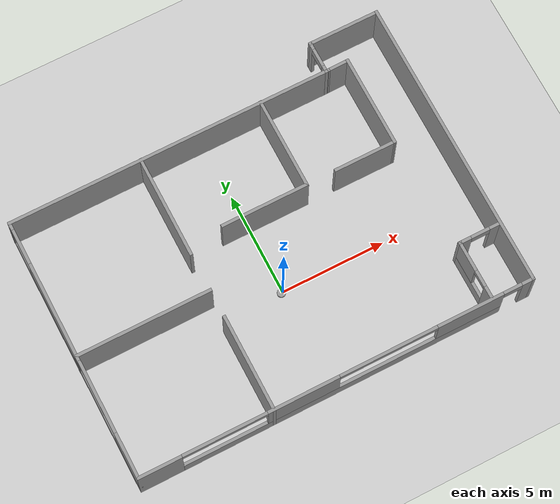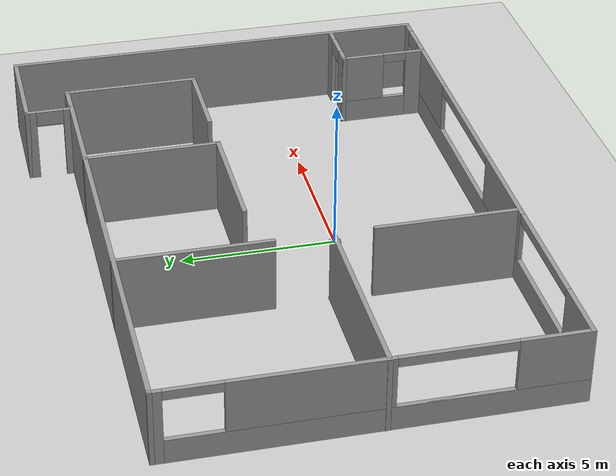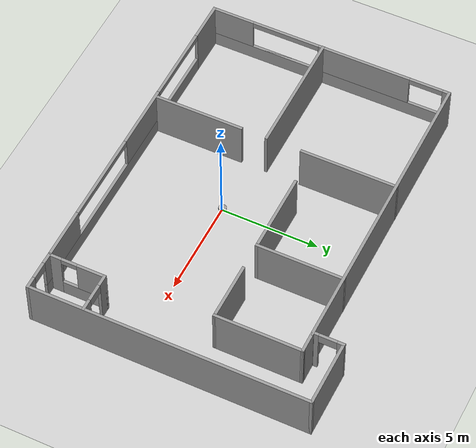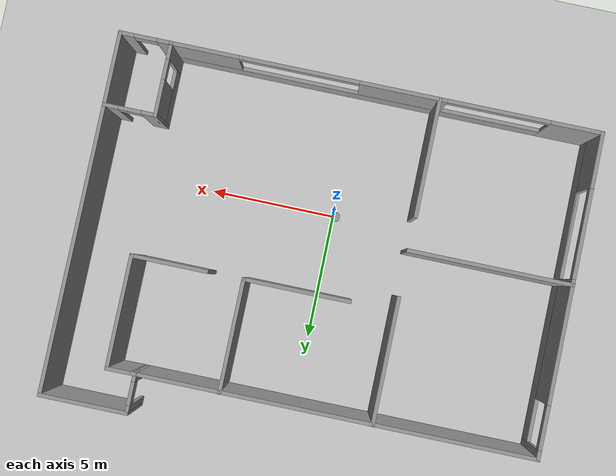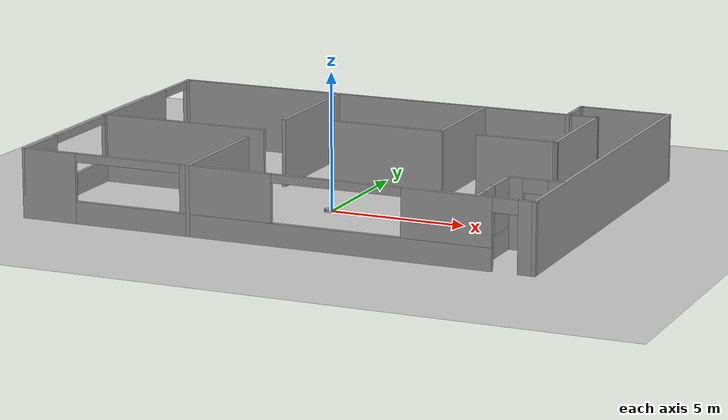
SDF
<sdf version="1.7">
 <world name="default">
  <model name="ground_plane">
   <static>1</static>
   <link name="link">
    <collision name="collision">
     <geometry><plane><normal>0 0 1</normal><size>100 100</size></plane></geometry>
     <surface>
      <contact><collide_bitmask>65535</collide_bitmask></contact>
      <friction><ode><mu>100</mu><mu2>50</mu2></ode></friction>
     </surface>
    </collision>
    <visual name="visual">
     <cast_shadows>0</cast_shadows>
     <geometry><plane><normal>0 0 1</normal><size>100 100</size></plane></geometry>
     <material>
      <script><uri>file://media/materials/scripts/gazebo.material</uri><name>Gazebo/Grey</name></script>
     </material>
    </visual>
   </link>
  </model>
  <model name="TrossenRoboticsOfficeBuilding">
   <pose>0 2 0 0 -0 0</pose>
   <link name="Wall_0">
    <pose>-9.41899 -0.749926 0 0 -0 -1.5708</pose>
    <visual name="Wall_0_Visual_0">
     <pose>-6.1662 0 1.25 0 -0 0</pose>
     <geometry><box><size>0.417592 0.15 2.5</size></box></geometry>
     <material>
      <script><uri>file://media/materials/scripts/gazebo.material</uri><name>Gazebo/Grey</name></script>
      <ambient>1 1 1 1</ambient>
     </material>
     <meta><layer>0</layer></meta>
    </visual>
    <collision name="Wall_0_Collision_0">
     <geometry><box><size>0.417592 0.15 2.5</size></box></geometry>
     <pose>-6.1662 0 1.25 0 -0 0</pose>
    </collision>
    <visual name="Wall_0_Visual_1">
     <pose>0.208796 0 0.4 0 -0 0</pose>
     <geometry><box><size>12.3324 0.15 0.8</size></box></geometry>
     <material>
      <script><uri>file://media/materials/scripts/gazebo.material</uri><name>Gazebo/Grey</name></script>
      <ambient>1 1 1 1</ambient>
     </material>
     <meta><layer>0</layer></meta>
    </visual>
    <collision name="Wall_0_Collision_1">
     <geometry><box><size>12.3324 0.15 0.8</size></box></geometry>
     <pose>0.208796 0 0.4 0 -0 0</pose>
    </collision>
    <visual name="Wall_0_Visual_2">
     <pose>-1.80949 0 1.65 0 -0 0</pose>
     <geometry><box><size>4.84784 0.15 1.7</size></box></geometry>
     <material>
      <script><uri>file://media/materials/scripts/gazebo.material</uri><name>Gazebo/Grey</name></script>
      <ambient>1 1 1 1</ambient>
     </material>
     <meta><layer>0</layer></meta>
    </visual>
    <collision name="Wall_0_Collision_2">
     <geometry><box><size>4.84784 0.15 1.7</size></box></geometry>
     <pose>-1.80949 0 1.65 0 -0 0</pose>
    </collision>
    <visual name="Wall_0_Visual_3">
     <pose>5.25622 0 1.65 0 -0 0</pose>
     <geometry><box><size>2.23757 0.15 1.7</size></box></geometry>
     <material>
      <script><uri>file://media/materials/scripts/gazebo.material</uri><name>Gazebo/Grey</name></script>
      <ambient>1 1 1 1</ambient>
     </material>
     <meta><layer>0</layer></meta>
    </visual>
    <collision name="Wall_0_Collision_3">
     <geometry><box><size>2.23757 0.15 1.7</size></box></geometry>
     <pose>5.25622 0 1.65 0 -0 0</pose>
    </collision>
    <visual name="Wall_0_Visual_4">
     <pose>2.37593 0 0.8 0 -0 0</pose>
     <geometry><box><size>3.523 0.15 0</size></box></geometry>
     <material>
      <script><uri>file://media/materials/scripts/gazebo.material</uri><name>Gazebo/Grey</name></script>
      <ambient>1 1 1 1</ambient>
     </material>
     <meta><layer>0</layer></meta>
    </visual>
    <collision name="Wall_0_Collision_4">
     <geometry><box><size>3.523 0.15 0</size></box></geometry>
     <pose>2.37593 0 0.8 0 -0 0</pose>
    </collision>
    <visual name="Wall_0_Visual_5">
     <pose>-5.09541 0 2.35 0 -0 0</pose>
     <geometry><box><size>1.724 0.15 0.3</size></box></geometry>
     <material>
      <script><uri>file://media/materials/scripts/gazebo.material</uri><name>Gazebo/Grey</name></script>
      <ambient>1 1 1 1</ambient>
     </material>
     <meta><layer>0</layer></meta>
    </visual>
    <collision name="Wall_0_Collision_5">
     <geometry><box><size>1.724 0.15 0.3</size></box></geometry>
     <pose>-5.09541 0 2.35 0 -0 0</pose>
    </collision>
    <visual name="Wall_0_Visual_6">
     <pose>2.37593 0 2.35 0 -0 0</pose>
     <geometry><box><size>3.523 0.15 0.3</size></box></geometry>
     <material>
      <script><uri>file://media/materials/scripts/gazebo.material</uri><name>Gazebo/Grey</name></script>
      <ambient>1 1 1 1</ambient>
     </material>
     <meta><layer>0</layer></meta>
    </visual>
    <collision name="Wall_0_Collision_6">
     <geometry><box><size>3.523 0.15 0.3</size></box></geometry>
     <pose>2.37593 0 2.35 0 -0 0</pose>
    </collision>
   </link>
   <link name="Wall_1">
    <pose>0.006011 -7.04993 0 0 -0 0</pose>
    <visual name="Wall_1_Visual_0">
     <pose>-8.45251 0 1.25 0 -0 0</pose>
     <geometry><box><size>2.09499 0.15 2.5</size></box></geometry>
     <material>
      <script><uri>file://media/materials/scripts/gazebo.material</uri><name>Gazebo/Grey</name></script>
      <ambient>1 1 1 1</ambient>
     </material>
     <meta><layer>0</layer></meta>
    </visual>
    <collision name="Wall_1_Collision_0">
     <geometry><box><size>2.09499 0.15 2.5</size></box></geometry>
     <pose>-8.45251 0 1.25 0 -0 0</pose>
    </collision>
    <visual name="Wall_1_Visual_1">
     <pose>9.18754 0 1.25 0 -0 0</pose>
     <geometry><box><size>0.624916 0.15 2.5</size></box></geometry>
     <material>
      <script><uri>file://media/materials/scripts/gazebo.material</uri><name>Gazebo/Grey</name></script>
      <ambient>1 1 1 1</ambient>
     </material>
     <meta><layer>0</layer></meta>
    </visual>
    <collision name="Wall_1_Collision_1">
     <geometry><box><size>0.624916 0.15 2.5</size></box></geometry>
     <pose>9.18754 0 1.25 0 -0 0</pose>
    </collision>
    <visual name="Wall_1_Visual_2">
     <pose>0.285035 0 0.4 0 -0 0</pose>
     <geometry><box><size>15.3801 0.15 0.8</size></box></geometry>
     <material>
      <script><uri>file://media/materials/scripts/gazebo.material</uri><name>Gazebo/Grey</name></script>
      <ambient>1 1 1 1</ambient>
     </material>
     <meta><layer>0</layer></meta>
    </visual>
    <collision name="Wall_1_Collision_2">
     <geometry><box><size>15.3801 0.15 0.8</size></box></geometry>
     <pose>0.285035 0 0.4 0 -0 0</pose>
    </collision>
    <visual name="Wall_1_Visual_3">
     <pose>-1.67035 0 1.65 0 -0 0</pose>
     <geometry><box><size>3.42869 0.15 1.7</size></box></geometry>
     <material>
      <script><uri>file://media/materials/scripts/gazebo.material</uri><name>Gazebo/Grey</name></script>
      <ambient>1 1 1 1</ambient>
     </material>
     <meta><layer>0</layer></meta>
    </visual>
    <collision name="Wall_1_Collision_3">
     <geometry><box><size>3.42869 0.15 1.7</size></box></geometry>
     <pose>-1.67035 0 1.65 0 -0 0</pose>
    </collision>
    <visual name="Wall_1_Visual_4">
     <pose>6.36821 0 1.65 0 -0 0</pose>
     <geometry><box><size>3.21375 0.15 1.7</size></box></geometry>
     <material>
      <script><uri>file://media/materials/scripts/gazebo.material</uri><name>Gazebo/Grey</name></script>
      <ambient>1 1 1 1</ambient>
     </material>
     <meta><layer>0</layer></meta>
    </visual>
    <collision name="Wall_1_Collision_4">
     <geometry><box><size>3.21375 0.15 1.7</size></box></geometry>
     <pose>6.36821 0 1.65 0 -0 0</pose>
    </collision>
    <visual name="Wall_1_Visual_5">
     <pose>8.42508 0 2.25 0 -0 0</pose>
     <geometry><box><size>0.9 0.15 0.5</size></box></geometry>
     <material>
      <script><uri>file://media/materials/scripts/gazebo.material</uri><name>Gazebo/Grey</name></script>
      <ambient>1 1 1 1</ambient>
     </material>
     <meta><layer>0</layer></meta>
    </visual>
    <collision name="Wall_1_Collision_5">
     <geometry><box><size>0.9 0.15 0.5</size></box></geometry>
     <pose>8.42508 0 2.25 0 -0 0</pose>
    </collision>
    <visual name="Wall_1_Visual_6">
     <pose>-5.39486 0 2.35 0 -0 0</pose>
     <geometry><box><size>4.02031 0.15 0.3</size></box></geometry>
     <material>
      <script><uri>file://media/materials/scripts/gazebo.material</uri><name>Gazebo/Grey</name></script>
      <ambient>1 1 1 1</ambient>
     </material>
     <meta><layer>0</layer></meta>
    </visual>
    <collision name="Wall_1_Collision_6">
     <geometry><box><size>4.02031 0.15 0.3</size></box></geometry>
     <pose>-5.39486 0 2.35 0 -0 0</pose>
    </collision>
    <visual name="Wall_1_Visual_7">
     <pose>2.40266 0 2.35 0 -0 0</pose>
     <geometry><box><size>4.71734 0.15 0.3</size></box></geometry>
     <material>
      <script><uri>file://media/materials/scripts/gazebo.material</uri><name>Gazebo/Grey</name></script>
      <ambient>1 1 1 1</ambient>
     </material>
     <meta><layer>0</layer></meta>
    </visual>
    <collision name="Wall_1_Collision_7">
     <geometry><box><size>4.71734 0.15 0.3</size></box></geometry>
     <pose>2.40266 0 2.35 0 -0 0</pose>
    </collision>
   </link>
   <link name="Wall_10">
    <collision name="Wall_10_Collision">
     <geometry><box><size>6.5 0.15 2.5</size></box></geometry>
     <pose>0 0 1.25 0 -0 0</pose>
    </collision>
    <visual name="Wall_10_Visual">
     <pose>0 0 1.25 0 -0 0</pose>
     <geometry><box><size>6.5 0.15 2.5</size></box></geometry>
     <material>
      <script><uri>file://media/materials/scripts/gazebo.material</uri><name>Gazebo/Grey</name></script>
      <ambient>1 1 1 1</ambient>
     </material>
     <meta><layer>0</layer></meta>
    </visual>
    <pose>-6.2561 -1.14107 0 0 -0 0</pose>
   </link>
   <link name="Wall_15">
    <collision name="Wall_15_Collision">
     <geometry><box><size>4.709 0.15 2.5</size></box></geometry>
     <pose>0 0 1.25 0 -0 0</pose>
    </collision>
    <visual name="Wall_15_Visual">
     <pose>0 0 1.25 0 -0 0</pose>
     <geometry><box><size>4.709 0.15 2.5</size></box></geometry>
     <material>
      <script><uri>file://media/materials/scripts/gazebo.material</uri><name>Gazebo/Grey</name></script>
      <ambient>1 1 1 1</ambient>
     </material>
     <meta><layer>0</layer></meta>
    </visual>
    <pose>-3.08091 -4.77053 0 0 -0 -1.5708</pose>
   </link>
   <link name="Wall_18">
    <collision name="Wall_18_Collision">
     <geometry><box><size>5 0.15 2.5</size></box></geometry>
     <pose>0 0 1.25 0 -0 0</pose>
    </collision>
    <visual name="Wall_18_Visual">
     <pose>0 0 1.25 0 -0 0</pose>
     <geometry><box><size>5 0.15 2.5</size></box></geometry>
     <material>
      <script><uri>file://media/materials/scripts/gazebo.material</uri><name>Gazebo/Grey</name></script>
      <ambient>1 1 1 1</ambient>
     </material>
     <meta><layer>0</layer></meta>
    </visual>
    <pose>-3.0811 3.13393 0 0 -0 1.5708</pose>
   </link>
   <link name="Wall_2">
    <collision name="Wall_2_Collision">
     <geometry><box><size>14.25 0.15 2.5</size></box></geometry>
     <pose>0 0 1.25 0 -0 0</pose>
    </collision>
    <visual name="Wall_2_Visual">
     <pose>0 0 1.25 0 -0 0</pose>
     <geometry><box><size>14.25 0.15 2.5</size></box></geometry>
     <material>
      <script><uri>file://media/materials/scripts/gazebo.material</uri><name>Gazebo/Grey</name></script>
      <ambient>1 1 1 1</ambient>
     </material>
     <meta><layer>0</layer></meta>
    </visual>
    <pose>9.43105 2.5e-05 0 0 -0 1.57079</pose>
   </link>
   <link name="Wall_20">
    <collision name="Wall_20_Collision">
     <geometry><box><size>4.5 0.15 2.5</size></box></geometry>
     <pose>0 0 1.25 0 -0 0</pose>
    </collision>
    <visual name="Wall_20_Visual">
     <pose>0 0 1.25 0 -0 0</pose>
     <geometry><box><size>4.5 0.15 2.5</size></box></geometry>
     <material>
      <script><uri>file://media/materials/scripts/gazebo.material</uri><name>Gazebo/Grey</name></script>
      <ambient>1 1 1 1</ambient>
     </material>
     <meta><layer>0</layer></meta>
    </visual>
    <pose>2.81816 3.38641 0 0 -0 -1.5708</pose>
   </link>
   <link name="Wall_21">
    <collision name="Wall_21_Collision">
     <geometry><box><size>4.25 0.15 2.5</size></box></geometry>
     <pose>0 0 1.25 0 -0 0</pose>
    </collision>
    <visual name="Wall_21_Visual">
     <pose>0 0 1.25 0 -0 0</pose>
     <geometry><box><size>4.25 0.15 2.5</size></box></geometry>
     <material>
      <script><uri>file://media/materials/scripts/gazebo.material</uri><name>Gazebo/Grey</name></script>
      <ambient>1 1 1 1</ambient>
     </material>
     <meta><layer>0</layer></meta>
    </visual>
    <pose>0.768162 1.21141 0 0 -0 3.14159</pose>
   </link>
   <link name="Wall_24">
    <collision name="Wall_24_Collision">
     <geometry><box><size>4.5 0.15 2.5</size></box></geometry>
     <pose>0 0 1.25 0 -0 0</pose>
    </collision>
    <visual name="Wall_24_Visual">
     <pose>0 0 1.25 0 -0 0</pose>
     <geometry><box><size>4.5 0.15 2.5</size></box></geometry>
     <material>
      <script><uri>file://media/materials/scripts/gazebo.material</uri><name>Gazebo/Grey</name></script>
      <ambient>1 1 1 1</ambient>
     </material>
     <meta><layer>0</layer></meta>
    </visual>
    <pose>7.16816 3.38641 0 0 -0 1.5708</pose>
   </link>
   <link name="Wall_25">
    <collision name="Wall_25_Collision">
     <geometry><box><size>1.13722 0.15 2.5</size></box></geometry>
     <pose>0 0 1.25 0 -0 0</pose>
    </collision>
    <visual name="Wall_25_Visual">
     <pose>0 0 1.25 0 -0 0</pose>
     <geometry><box><size>1.13722 0.15 2.5</size></box></geometry>
     <material>
      <script><uri>file://media/materials/scripts/gazebo.material</uri><name>Gazebo/Grey</name></script>
      <ambient>1 1 1 1</ambient>
     </material>
     <meta><layer>0</layer></meta>
    </visual>
    <pose>6.67459 5.55574 0 0 -0 -3.13011</pose>
   </link>
   <link name="Wall_27">
    <collision name="Wall_27_Collision">
     <geometry><box><size>3.04868 0.15 2.5</size></box></geometry>
     <pose>0 0 1.25 0 -0 0</pose>
    </collision>
    <visual name="Wall_27_Visual">
     <pose>0 0 1.25 0 -0 0</pose>
     <geometry><box><size>3.04868 0.15 2.5</size></box></geometry>
     <material>
      <script><uri>file://media/materials/scripts/gazebo.material</uri><name>Gazebo/Grey</name></script>
      <ambient>1 1 1 1</ambient>
     </material>
     <meta><layer>0</layer></meta>
    </visual>
    <pose>5.71882 1.21452 0 0 -0 -0.002145</pose>
   </link>
   <link name="Wall_3">
    <collision name="Wall_3_Collision">
     <geometry><box><size>3.5 0.15 2.5</size></box></geometry>
     <pose>0 0 1.25 0 -0 0</pose>
    </collision>
    <visual name="Wall_3_Visual">
     <pose>0 0 1.25 0 -0 0</pose>
     <geometry><box><size>3.5 0.15 2.5</size></box></geometry>
     <material>
      <script><uri>file://media/materials/scripts/gazebo.material</uri><name>Gazebo/Grey</name></script>
      <ambient>1 1 1 1</ambient>
     </material>
     <meta><layer>0</layer></meta>
    </visual>
    <pose>7.7561 7.04997 0 0 -0 3.14159</pose>
   </link>
   <link name="Wall_31">
    <pose>6.0811 6.29948 0 0 -0 -1.5708</pose>
    <visual name="Wall_31_Visual_0">
     <pose>-0.636014 0 1.25 0 -0 0</pose>
     <geometry><box><size>0.378971 0.15 2.5</size></box></geometry>
     <material>
      <script><uri>file://media/materials/scripts/gazebo.material</uri><name>Gazebo/Grey</name></script>
      <ambient>1 1 1 1</ambient>
     </material>
     <meta><layer>0</layer></meta>
    </visual>
    <collision name="Wall_31_Collision_0">
     <geometry><box><size>0.378971 0.15 2.5</size></box></geometry>
     <pose>-0.636014 0 1.25 0 -0 0</pose>
    </collision>
    <visual name="Wall_31_Visual_1">
     <pose>0.639486 0 1.25 0 -0 0</pose>
     <geometry><box><size>0.372029 0.15 2.5</size></box></geometry>
     <material>
      <script><uri>file://media/materials/scripts/gazebo.material</uri><name>Gazebo/Grey</name></script>
      <ambient>1 1 1 1</ambient>
     </material>
     <meta><layer>0</layer></meta>
    </visual>
    <collision name="Wall_31_Collision_1">
     <geometry><box><size>0.372029 0.15 2.5</size></box></geometry>
     <pose>0.639486 0 1.25 0 -0 0</pose>
    </collision>
    <visual name="Wall_31_Visual_2">
     <pose>0.003471 0 2.25 0 -0 0</pose>
     <geometry><box><size>0.9 0.15 0.5</size></box></geometry>
     <material>
      <script><uri>file://media/materials/scripts/gazebo.material</uri><name>Gazebo/Grey</name></script>
      <ambient>1 1 1 1</ambient>
     </material>
     <meta><layer>0</layer></meta>
    </visual>
    <collision name="Wall_31_Collision_2">
     <geometry><box><size>0.9 0.15 0.5</size></box></geometry>
     <pose>0.003471 0 2.25 0 -0 0</pose>
    </collision>
   </link>
   <link name="Wall_33">
    <pose>8.43109 -4.20702 0 0 -0 0</pose>
    <visual name="Wall_33_Visual_0">
     <pose>-0.761405 0 1.25 0 -0 0</pose>
     <geometry><box><size>0.62319 0.15 2.5</size></box></geometry>
     <material>
      <script><uri>file://media/materials/scripts/gazebo.material</uri><name>Gazebo/Grey</name></script>
      <ambient>1 1 1 1</ambient>
     </material>
     <meta><layer>0</layer></meta>
    </visual>
    <collision name="Wall_33_Collision_0">
     <geometry><box><size>0.62319 0.15 2.5</size></box></geometry>
     <pose>-0.761405 0 1.25 0 -0 0</pose>
    </collision>
    <visual name="Wall_33_Visual_1">
     <pose>0.761595 0 1.25 0 -0 0</pose>
     <geometry><box><size>0.62281 0.15 2.5</size></box></geometry>
     <material>
      <script><uri>file://media/materials/scripts/gazebo.material</uri><name>Gazebo/Grey</name></script>
      <ambient>1 1 1 1</ambient>
     </material>
     <meta><layer>0</layer></meta>
    </visual>
    <collision name="Wall_33_Collision_1">
     <geometry><box><size>0.62281 0.15 2.5</size></box></geometry>
     <pose>0.761595 0 1.25 0 -0 0</pose>
    </collision>
    <visual name="Wall_33_Visual_2">
     <pose>0.00019 0 2.25 0 -0 0</pose>
     <geometry><box><size>0.9 0.15 0.5</size></box></geometry>
     <material>
      <script><uri>file://media/materials/scripts/gazebo.material</uri><name>Gazebo/Grey</name></script>
      <ambient>1 1 1 1</ambient>
     </material>
     <meta><layer>0</layer></meta>
    </visual>
    <collision name="Wall_33_Collision_2">
     <geometry><box><size>0.9 0.15 0.5</size></box></geometry>
     <pose>0.00019 0 2.25 0 -0 0</pose>
    </collision>
   </link>
   <link name="Wall_6">
    <collision name="Wall_6_Collision">
     <geometry><box><size>15.75 0.15 2.5</size></box></geometry>
     <pose>0 0 1.25 0 -0 0</pose>
    </collision>
    <visual name="Wall_6_Visual">
     <pose>0 0 1.25 0 -0 0</pose>
     <geometry><box><size>15.75 0.15 2.5</size></box></geometry>
     <material>
      <script><uri>file://media/materials/scripts/gazebo.material</uri><name>Gazebo/Grey</name></script>
      <ambient>1 1 1 1</ambient>
     </material>
     <meta><layer>0</layer></meta>
    </visual>
    <pose>-1.61899 5.55007 0 0 -0 0</pose>
   </link>
   <link name="Wall_8">
    <pose>7.43326 -5.62667 0 0 -0 1.57091</pose>
    <visual name="Wall_8_Visual_0">
     <pose>-1.14327 0 1.25 0 -0 0</pose>
     <geometry><box><size>0.702754 0.15 2.5</size></box></geometry>
     <material>
      <script><uri>file://media/materials/scripts/gazebo.material</uri><name>Gazebo/Grey</name></script>
      <ambient>1 1 1 1</ambient>
     </material>
     <meta><layer>0</layer></meta>
    </visual>
    <collision name="Wall_8_Collision_0">
     <geometry><box><size>0.702754 0.15 2.5</size></box></geometry>
     <pose>-1.14327 0 1.25 0 -0 0</pose>
    </collision>
    <visual name="Wall_8_Visual_1">
     <pose>0.351377 0 0.4 0 -0 0</pose>
     <geometry><box><size>2.28653 0.15 0.8</size></box></geometry>
     <material>
      <script><uri>file://media/materials/scripts/gazebo.material</uri><name>Gazebo/Grey</name></script>
      <ambient>1 1 1 1</ambient>
     </material>
     <meta><layer>0</layer></meta>
    </visual>
    <collision name="Wall_8_Collision_1">
     <geometry><box><size>2.28653 0.15 0.8</size></box></geometry>
     <pose>0.351377 0 0.4 0 -0 0</pose>
    </collision>
    <visual name="Wall_8_Visual_2">
     <pose>0.751377 0 1.65 0 -0 0</pose>
     <geometry><box><size>1.48653 0.15 1.7</size></box></geometry>
     <material>
      <script><uri>file://media/materials/scripts/gazebo.material</uri><name>Gazebo/Grey</name></script>
      <ambient>1 1 1 1</ambient>
     </material>
     <meta><layer>0</layer></meta>
    </visual>
    <collision name="Wall_8_Collision_2">
     <geometry><box><size>1.48653 0.15 1.7</size></box></geometry>
     <pose>0.751377 0 1.65 0 -0 0</pose>
    </collision>
    <visual name="Wall_8_Visual_3">
     <pose>-0.39189 0 2.35 0 -0 0</pose>
     <geometry><box><size>0.8 0.15 0.3</size></box></geometry>
     <material>
      <script><uri>file://media/materials/scripts/gazebo.material</uri><name>Gazebo/Grey</name></script>
      <ambient>1 1 1 1</ambient>
     </material>
     <meta><layer>0</layer></meta>
    </visual>
    <collision name="Wall_8_Collision_3">
     <geometry><box><size>0.8 0.15 0.3</size></box></geometry>
     <pose>-0.39189 0 2.35 0 -0 0</pose>
    </collision>
   </link>
   <static>1</static>
  </model>
  <model name="artefacts_box">
   <link name="link">
    <inertial>
     <mass>0.04</mass>
     <inertia>
      <ixx>1.025e-05</ixx>
      <ixy>0</ixy>
      <ixz>0</ixz>
      <iyy>1.025e-05</iyy>
      <iyz>0</iyz>
      <izz>3.84e-06</izz>
     </inertia>
    </inertial>
    <visual name="visual">
     <geometry><box><size>0.045 0.045 0.045</size></box></geometry>
     <material>
      <script><name>Gazebo/Grey</name><uri>file://media/materials/scripts/gazebo.material</uri></script>
      <shader type="pixel"><normal_map>__default__</normal_map></shader>
      <ambient>0.3 0.3 0.3 1</ambient>
      <diffuse>0.7 0.7 0.7 1</diffuse>
      <specular>0.01 0.01 0.01 1</specular>
      <emissive>0 0 0 1</emissive>
     </material>
    </visual>
    <collision name="collision">
     <max_contacts>20</max_contacts>
     <geometry><box><size>0.045 0.045 0.045</size></box></geometry>
     <surface>
      <friction>
       <ode><mu>1</mu><mu2>1</mu2><fdir1>0 0 0</fdir1><slip1>0</slip1><slip2>0</slip2></ode>
       <torsional>
        <coefficient>1</coefficient>
        <patch_radius>0</patch_radius>
        <surface_radius>0</surface_radius>
        <use_patch_radius>1</use_patch_radius>
        <ode><slip>0</slip></ode>
       </torsional>
      </friction>
      <bounce><restitution_coefficient>0</restitution_coefficient><threshold>1e+06</threshold></bounce>
      <contact>
       <collide_without_contact>0</collide_without_contact>
       <collide_without_contact_bitmask>1</collide_without_contact_bitmask>
       <collide_bitmask>1</collide_bitmask>
       <ode>
        <soft_cfm>0</soft_cfm>
        <soft_erp>0.2</soft_erp>
        <kp>1e+13</kp>
        <kd>1</kd>
        <max_vel>0.01</max_vel>
        <min_depth>0</min_depth>
       </ode>
       <bullet>
        <split_impulse>1</split_impulse>
        <split_impulse_penetration_threshold>-0.01</split_impulse_penetration_threshold>
        <soft_cfm>0</soft_cfm>
        <soft_erp>0.2</soft_erp>
        <kp>1e+13</kp>
        <kd>1</kd>
       </bullet>
      </contact>
     </surface>
    </collision>
   </link>
   <static>0</static>
   <pose>0.574342 0.005543 0 0 -0 0</pose>
  </model>
  <model name="locobase">
   <link name="link">
    <inertial>
     <mass>1</mass>
     <inertia><ixx>0.145833</ixx><ixy>0</ixy><ixz>0</ixz><iyy>0.145833</iyy><iyz>0</iyz><izz>0.125</izz></inertia>
    </inertial>
    <visual name="visual">
     <geometry><cylinder><radius>0.2</radius><length>0.09</length></cylinder></geometry>
     <material>
      <script><name>Gazebo/Grey</name><uri>file://media/materials/scripts/gazebo.material</uri></script>
      <shader type="pixel"><normal_map>__default__</normal_map></shader>
      <ambient>0.3 0.3 0.3 1</ambient>
      <diffuse>0.7 0.7 0.7 1</diffuse>
      <specular>0.01 0.01 0.01 1</specular>
      <emissive>0 0 0 1</emissive>
     </material>
    </visual>
    <collision name="collision">
     <geometry><cylinder><radius>0.2</radius><length>0.09</length></cylinder></geometry>
     <surface>
      <friction>
       <ode><mu>1</mu><mu2>1</mu2><fdir1>0 0 0</fdir1><slip1>0</slip1><slip2>0</slip2></ode>
       <torsional>
        <coefficient>1</coefficient>
        <patch_radius>0</patch_radius>
        <surface_radius>0</surface_radius>
        <use_patch_radius>1</use_patch_radius>
        <ode><slip>0</slip></ode>
       </torsional>
      </friction>
      <bounce><restitution_coefficient>0</restitution_coefficient><threshold>1e+06</threshold></bounce>
      <contact>
       <collide_without_contact>0</collide_without_contact>
       <collide_without_contact_bitmask>1</collide_without_contact_bitmask>
       <collide_bitmask>1</collide_bitmask>
       <ode>
        <soft_cfm>0</soft_cfm>
        <soft_erp>0.2</soft_erp>
        <kp>1e+13</kp>
        <kd>1</kd>
        <max_vel>0.01</max_vel>
        <min_depth>0</min_depth>
       </ode>
       <bullet>
        <split_impulse>1</split_impulse>
        <split_impulse_penetration_threshold>-0.01</split_impulse_penetration_threshold>
        <soft_cfm>0</soft_cfm>
        <soft_erp>0.2</soft_erp>
        <kp>1e+13</kp>
        <kd>1</kd>
       </bullet>
      </contact>
     </surface>
    </collision>
   </link>
   <static>0</static>
   <pose>-0.08 0.0 0.045 0 -0 0</pose>
  </model>
 </world>
</sdf>
